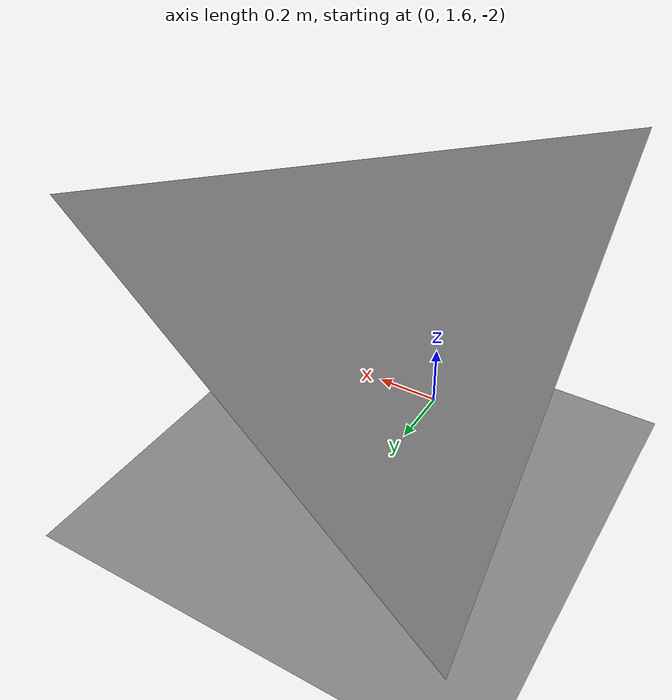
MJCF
<mujoco>
    <asset>
        <mesh name="tetrahedron" scale="0.5 0.5 0.5"
            vertex="1 1 1  -1 -1 1  1 -1 -1  -1 1 -1"
            face="0 1 2  0 3 1  0 2 3  1 3 2"/>
    </asset>
    <custom>
        <numeric data="12" name="max_contact_points"/>
    </custom>
    <worldbody>
        <light pos="-.5 .7 1.5" cutoff="55"/>
        <body pos="0.0 2.0 -1.475">
            <freejoint/>
            <geom type="mesh" mesh="tetrahedron"/>
        </body>
        <body pos="0.0 0.0 -2.0">
            <geom type="plane" size="40 40 40"/>
        </body>
    </worldbody>
</mujoco>
